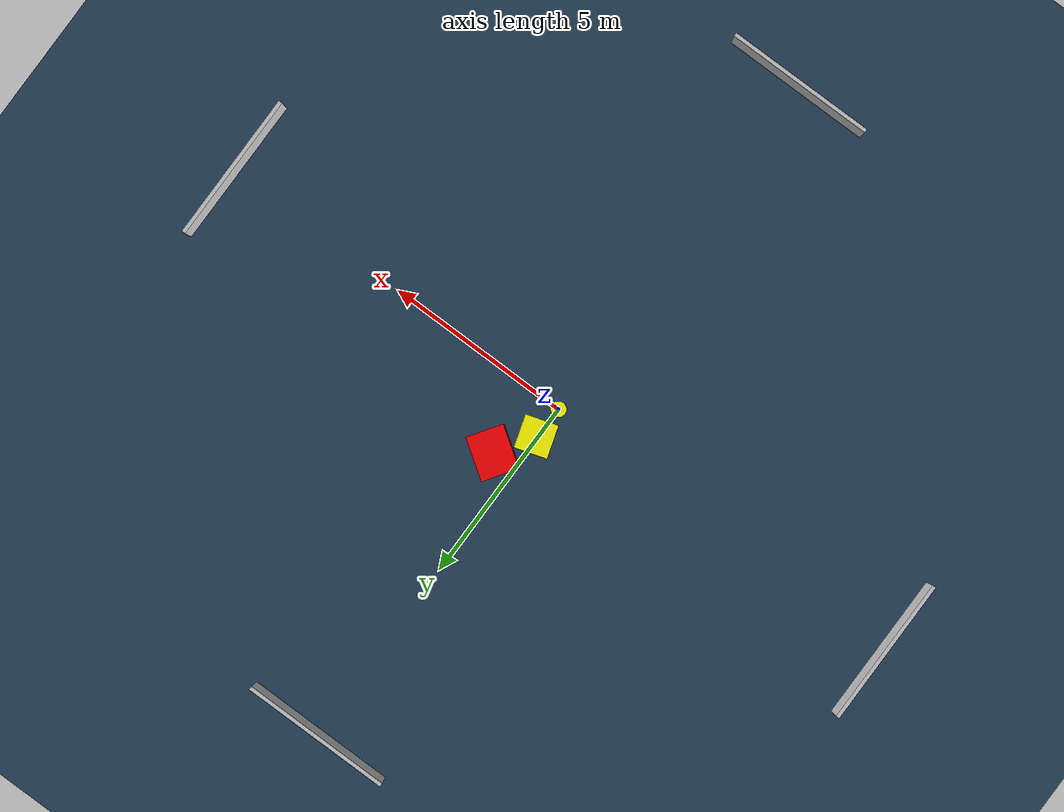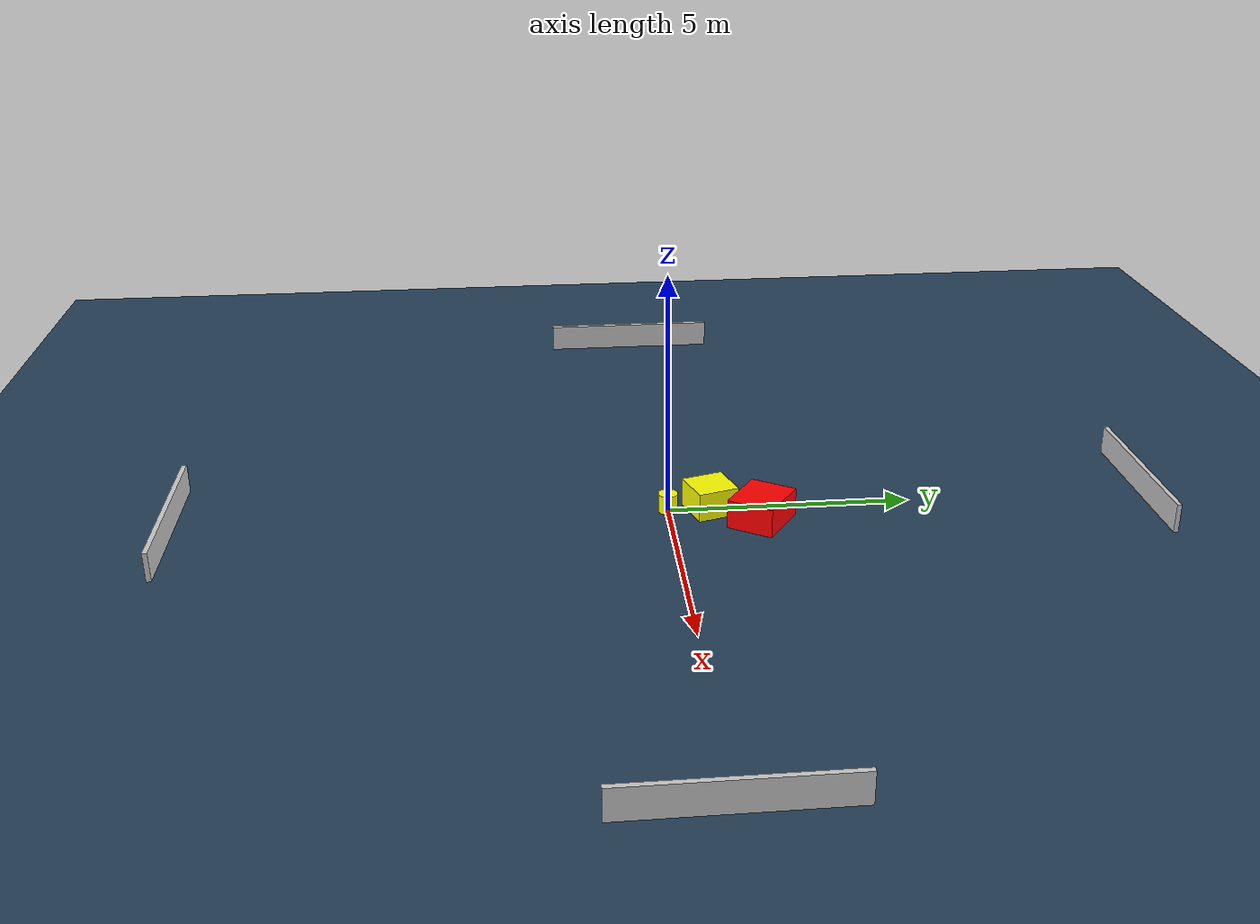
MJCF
<?xml version="1.0" ?>
<mujoco model="generated_environment">
  <option timestep="0.01" integrator="RK4" cone="elliptic"/>
  <default>
    <geom density="1"/>
  </default>
  <asset>
    <texture builtin="gradient" height="3072" name="skybox" rgb1="0.3 0.5 0.7" rgb2="0 0 0" type="skybox" width="512"/>
    <texture builtin="checker" height="300" name="groundplane" rgb1="0.2 0.3 0.4" rgb2="0.1 0.2 0.3" type="2d" width="300"/>
    <material name="groundplane" reflectance="0.2" texrepeat="5 5" texture="groundplane"/>
  </asset>
  <worldbody>
    <light dir="0 0 -1" directional="true" pos="0 0 1.5"/>
    <geom condim="3" friction="0.5 0.005 0.001" material="groundplane" name="floor" pos="0 0 0" size="0 0 0.05" type="plane"/>
    <body name="walls">
      <geom name="wall_1" condim="4" pos="-10.0 0.0 0.3" rgba="0.800000011920929 0.800000011920929 0.800000011920929 1.0" size="0.05 2.0 0.3" type="box"/>
      <geom name="wall_2" condim="4" pos="10.0 0.0 0.3" rgba="0.800000011920929 0.800000011920929 0.800000011920929 1.0" size="0.05 2.0 0.3" type="box"/>
      <geom name="wall_3" condim="4" pos="0.0 -10.0 0.3" rgba="0.800000011920929 0.800000011920929 0.800000011920929 1.0" size="2.0 0.05 0.3" type="box"/>
      <geom name="wall_4" condim="4" pos="0.0 10.0 0.3" rgba="0.800000011920929 0.800000011920929 0.800000011920929 1.0" size="2.0 0.05 0.3" type="box"/>
    </body>
    <body name="robot">
      <joint name="joint_x" type="slide" pos="0 0 0" axis="1 0 0"/>
      <joint name="joint_y" type="slide" pos="0 0 0" axis="0 1 0"/>
      <geom name="robot" type="cylinder" pos="0.0 0.0 0.2" size="0.2 0.2 0.0" mass="5.0" friction="1.0 0.005 0.0001" condim="4" rgba="1.0 1.0 0.0 1.0"/>
    </body>
    <body name="obstacle_1_movable">
      <geom name="obstacle_1_movable" condim="4" pos="0.041377734458305754 0.865823475856954 0.3" euler="0 0 197.22398151120163" friction="0.0 0.005 0.001" rgba="1.0 1.0 0.0 1.0" size="0.4325283618847527 0.436004321805601 0.3" type="box" mass="0.1"/>
      <joint type="free"/>
    </body>
    <body name="obstacle_2_static">
      <geom name="obstacle_2_static" condim="4" pos="0.6708060034135004 1.8332102907456977 0.3" euler="0 0 146.14443229822575" friction="0.0 0.005 0.001" rgba="1.0 0.0 0.0 1.0" size="0.5792351820454513 0.49124696159338366 0.3" type="box"/>
    </body>
  </worldbody>
  <actuator>
    <motor name="actuator_x" joint="joint_x" gear="1" ctrlrange="-1 1"/>
    <motor name="actuator_y" joint="joint_y" gear="1" ctrlrange="-1 1"/>
  </actuator>
</mujoco>
